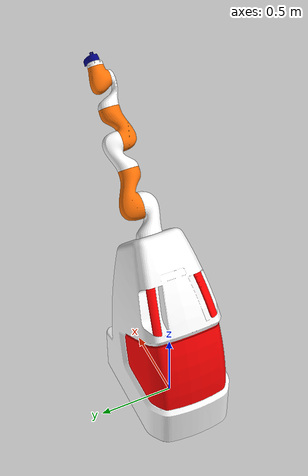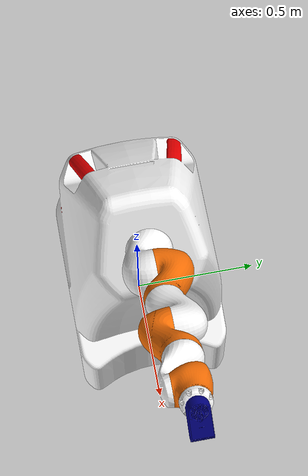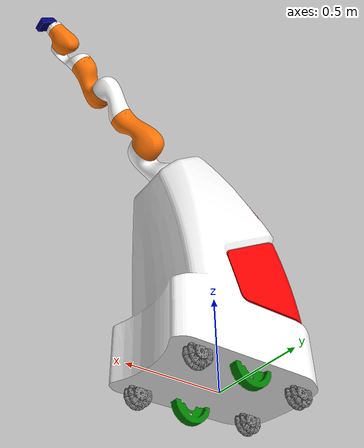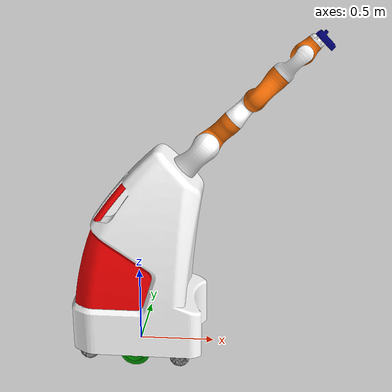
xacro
<?xml version="1.0"?>
<robot name="Ronna"  xmlns:xacro="http://www.ros.org/wiki/xacro">

    <xacro:include filename="ronna_common_properties.xacro"/>
    <xacro:include filename="ronna_K1_mobilna.urdf.xacro"/>
    <xacro:include filename="ronna_K1_mobilna_gazebo.xacro"/>
        <!-- it is important to include (gazebo.xacro) after urdf because we references on the link in urdf -->
    <xacro:include filename="ronna_K1_robot.urdf.xacro"/>
    <xacro:include filename="ronna_K1_robot_gazebo.xacro"/>

    <joint name="mobile_platform_robot_joint" type="fixed">
        <parent link="platform_link"/>
        <child link="robot_base_link"/>
        <origin xyz="0.185550 0.0 1.1000" rpy="0.0 ${pi/4} 0.0"/>
    </joint>

</robot>

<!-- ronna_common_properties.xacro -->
<robot name="mobilni_robot" xmlns:xacro="http://www.ros.org/wiki/xacro">
<!-- definition of material -->
    <!--gazebo color pallet  https://gist.github.com/naoki-mizuno/5e63a13597d5c5fe817c1600b829595e -->

    <material name="blue">
        <color rgba="0 0 0.5 1"/>
    </material>

    <material name="green">
        <color rgba="0 0.5 0 1"/>
    </material>

    <material name="orange">
        <color rgba="1 0.45 0.02345 1"/>
    </material>

    <material name="grey">
        <color rgba="0.5 0.5 0.5 1"/>
    </material>

    <material name="white">
        <color rgba="1 1 1 1"/>
    </material>

    <material name="red">
        <color rgba="1 0 0 1"/>
    </material>

    <!--possible define of macros here and call it in main xacro-->

</robot>

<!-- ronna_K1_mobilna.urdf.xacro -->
<robot xmlns:xacro="http://www.ros.org/wiki/xacro">

<!-- links -->
    <link name="base_footprint"/>

    <link name="platform_link">
        <visual>
            <origin xyz="0 0 0" rpy="0 0 0"/>
            <geometry>
                <mesh filename="file://$(find my_robot_description)/meshes/platform.stl" scale="0.001 0.001 0.001"/>
            </geometry>
            <material name="white"/>
        </visual>

        <inertial>
            <origin xyz="0 0 0.7" rpy="0 0 0"/>
            <mass value="365"/>
            <inertia ixx="60.048910"  ixy="0"  ixz="0" iyy="65.952215" iyz="0" izz="24.168592" />

        </inertial>

        <collision>
            <geometry>
                <box size="0.9 0.6 1.4" />
            </geometry>
            <origin xyz="0 0 0.7" rpy="0 0 0"/>
        </collision>
    </link>

    <link name="service_cover_link">
        <visual>
            <origin xyz="0 0 0" rpy="0 0 0"/>
            <geometry>
                <mesh filename="file://$(find my_robot_description)/meshes/service_cover.stl" scale="0.001 0.001 0.001"/>
            </geometry>
            <material name="red"/>
        </visual>

        <inertial>
            <origin xyz="0 0 -0.1" rpy="0 0 0"/>
            <mass value="5"/>
            <inertia ixx="0.196649"  ixy="0.000008"  ixz="-0.005308" iyy="0.166915" iyz="-0.000002" izz="0.193389" />
        </inertial>

        <collision>
            <geometry>
                <box size="0.01 0.01 0.01" />
            </geometry>
            <origin xyz="0 0 -0.005" rpy="0 0 0"/>

        </collision>
    </link>

     <!-- wheels
         DIFFERENTIAL drive wheels
            ${pi / 2.0}=1.5708=90deg -->
            <link name="desni_kotac_link">
                <visual>
                    <origin xyz="0 0 0" rpy="0 ${pi / 2.0} 0" />
                    <geometry>
                        <mesh filename="file://$(find my_robot_description)/meshes/drive_wheel.stl" scale="0.001 0.001 0.001"/>
                    </geometry>
                    <material name="green" />
                </visual>
                <inertial>
                    <origin xyz="0 0 0" rpy="0 ${pi / 2.0} 0"/>
                    <mass value="2"/>
                    <inertia ixx="0.014021"  ixy="0"  ixz="0" iyy="0.007364" iyz="0" izz="0.007364"/>
                </inertial>

                <collision>
                    <geometry>
                        <cylinder radius="0.1" length="0.06"/>
                    </geometry>
                    <origin xyz="0 0 0" rpy="0 0 0"/>
                </collision>
            </link>

            <link name="lijevi_kotac_link">
                <visual>
                    <origin xyz="0 0 0" rpy="0 ${pi / 2.0} 0" />
                    <geometry>
                        <mesh filename="file://$(find my_robot_description)/meshes/drive_wheel.stl" scale="0.001 0.001 0.001"/>
                    </geometry>
                    <material name="green" />
                </visual>
                <inertial>
                    <origin xyz="0 0 0" rpy="0 ${pi / 2.0} 0"/>
                    <mass value="2"/>
                    <inertia ixx="0.014021"  ixy="0"  ixz="0" iyy="0.007364" iyz="0" izz="0.007364"/>
                </inertial>

                <collision>
                    <geometry>
                        <cylinder radius="0.1" length="0.06"/>
                    </geometry>
                    <origin xyz="0 0 0" rpy="0 0 0"/>
                </collision>
            </link>

        <!-- omni wheel    p-forward d-right l-left z-back  -->

            <!-- xacro:macro function that reduces repetition of the same code
                        it is possible of call macros inside the macros-->
            <xacro:macro name="omni_whell" params="name" >
                <link name="${name}">
                    <visual>
                        <geometry>
                            <mesh filename="file://$(find my_robot_description)/meshes/ommni_suport_wheel.stl" scale="0.001 0.001 0.001"/>
                        </geometry>
                        <origin xyz="0 -0.016 0" rpy="${pi / 2.0} 0 0" />
                        <material name="grey" />
                    </visual>

                    <inertial>
                        <origin xyz="0 -0.016 0" rpy="${pi / 2.0} 0 0" />
                        <mass value="0.5"/>
                        <inertia ixx="0.000638"  ixy="0"  ixz="0" iyy="0.000638" iyz="0" izz="0.007364" />
                    </inertial>

                    <collision>
                        <geometry>
                            <cylinder radius="0.065" length="0.08"/>
                        </geometry>
                        <origin xyz="0 -0.016 0" rpy="${pi / 2.0} 0 0" />
                    </collision>
                </link>
            </xacro:macro>

            <xacro:omni_whell name="omni_pd_link"/>
            <xacro:omni_whell name="omni_pl_link"/>
            <xacro:omni_whell name="omni_zd_link"/>
            <xacro:omni_whell name="omni_zl_link"/>

            <!-- without using the macro function we have a lot of repetition of the same code-->

<!-- JOINT CONFIGURATION -->

    <joint name="footprint_platforma_joint" type="fixed">
        <parent link="base_footprint"/>
        <child link="platform_link"/>
        <origin xyz="0 0 0" rpy="0 0 0"/>
    </joint>

    <joint name="platforma_cover_joint" type="fixed">
        <parent link="platform_link"/>
        <child link="service_cover_link"/>
        <origin xyz="0 0 0" rpy="0 0 0"/>
    </joint>

    <!-- diff drive joint -->

        <joint name="platforma_right_wheel_joint" type="continuous">
            <parent link="platform_link"/>
            <child link="desni_kotac_link" />
            <origin xyz="0 -0.2239445 0.03" rpy="${pi / 2.0} 0 0" />
            <axis xyz="0 0 1" />
        </joint>

        <joint name="platforma_left_wheel_joint" type="continuous">
            <parent link="platform_link"/>
            <child link="lijevi_kotac_link" />
            <origin xyz="0 0.2239445 0.03" rpy="${pi / 2.0} 0 0" />
            <axis xyz="0 0 1" />
        </joint>
    <!-- omni joint also posible with marco functions-->

        <xacro:macro name="omni_joint" params="name position_x position_y">
            <joint name="platforma_omni_${name}_joint" type="fixed">
                <parent link="platform_link"/>
                <child link="omni_${name}_link" />
                <origin xyz="${position_x} ${position_y} 0" rpy="0 0 0" />
                <axis xyz="0 1 0" />
            </joint>
        </xacro:macro>

        <xacro:omni_joint name="pd" position_x="0.292" position_y="-0.232" />
        <xacro:omni_joint name="pl" position_x="0.292" position_y="0.232" />
        <xacro:omni_joint name="zd" position_x="-0.315" position_y="-0.182" />
        <xacro:omni_joint name="zl" position_x="-0.315" position_y="0.182" />

</robot>

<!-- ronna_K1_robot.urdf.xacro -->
<robot  xmlns:xacro="http://www.ros.org/wiki/xacro">

<!-- LINKOVI -->

    <link name="robot_base_link">
        <visual>
            <origin xyz="0 0 0" rpy="0 0 0"/>  <!-- tu su definirani pomaci tijela u odnosu na postojeći koord tijela-->
            <geometry>
                <mesh filename="file://$(find my_robot_description)/meshes/robot_base.stl" scale="0.001 0.001 0.001"/>
            </geometry>
            <material name="orange"/>
        </visual>

        <inertial>
            <origin xyz="0 0 0" rpy="0 0 0"/>
            <mass value="5.85"/>
            <inertia ixx="100"  ixy="0"  ixz="0" iyy="100" iyz="0" izz="100" />
        </inertial>

        <collision>
            <origin xyz="0 0 0" rpy="0 0 0"/>
            <geometry>
                <mesh filename="file://$(find my_robot_description)/meshes/robot_base.stl" scale="0.001 0.001 0.001"/>
            </geometry>
        </collision>

    </link>

    <!-- JOINT KONFIGURACIJA -->

    <joint name="base_link_1_joint" type="revolute">
        <axis xyz="0 0 1"/>
        <limit effort="0" lower="-2.967059" upper="2.967059" velocity="1.71042"/>
        <origin xyz="0 0 0.36" rpy="0 0 0 "/>
        <parent link="robot_base_link"/>
        <child link="robot_1_link"/>
        <dynamics damping="0.05" friction="0.1"/>

    </joint>

    <link name="robot_1_link">
        <visual>
            <origin xyz="0 0 0" rpy="0 0 0"/>
            <geometry>
                <mesh filename="file://$(find my_robot_description)/meshes/robot_link_1.stl" scale="0.001 0.001 0.001"/>
            </geometry>
            <material name="white"/>
        </visual>

        <inertial>
            <origin xyz="0 0 0" rpy="0 0 0"/>
            <mass value="5.85"/>
            <inertia ixx="100"  ixy="0"  ixz="0" iyy="100" iyz="0" izz="100" />
        </inertial>

        <collision>
            <origin xyz="0 0 0" rpy="0 0 0"/>
            <geometry>
                <mesh filename="file://$(find my_robot_description)/meshes/robot_link_1.stl" scale="0.001 0.001 0.001"/>
            </geometry>
        </collision>

    </link>

    <joint name="link_1-2_joint" type="revolute">
        <axis xyz="0 0 1"/>
        <limit effort="0" lower="-2.09439" upper="2.09439" velocity="1.71042"/>
        <origin xyz="0 0 0" rpy="-1.57 0 0 "/>
        <parent link="robot_1_link"/>
        <child link="robot_2_link"/>
        <dynamics damping="0.05" friction="0.1"/>
    </joint>

    <link name="robot_2_link">
        <visual>
            <origin xyz="0 0 0" rpy="0 0 0"/>
            <geometry>
                <mesh filename="file://$(find my_robot_description)/meshes/robot_link_2.stl" scale="0.001 0.001 0.001"/>
            </geometry>

            <material name="orange"/>
        </visual>

        <inertial>
            <origin xyz="0 0 0" rpy="0 0 0"/>
            <mass value="4.9289"/>
            <inertia ixx="100"  ixy="0"  ixz="0" iyy="100" iyz="0" izz="100" />
        </inertial>

        <collision>
            <origin xyz="0 0 0" rpy="0 0 0"/>
            <geometry>
                <mesh filename="file://$(find my_robot_description)/meshes/robot_link_2.stl" scale="0.001 0.001 0.001"/>
            </geometry>
        </collision>
    </link>

    <joint name="link_2-3_joint" type="revolute">
        <axis xyz="0 0 1"/>
        <limit effort="0" lower="-2.967059" upper="2.967059" velocity="1.7452"/>
        <origin xyz="0 -0.420 0" rpy="1.57070 0 0"/>
        <parent link="robot_2_link"/>
        <child link="robot_3_link"/>
        <dynamics damping="0.05" friction="0.1"/>
    </joint>

    <link name="robot_3_link">
        <visual>
            <origin xyz="0 0 0" rpy="0 0 0"/>
            <geometry>
                <mesh filename="file://$(find my_robot_description)/meshes/robot_link_3.stl" scale="0.001 0.001 0.001"/>
            </geometry>
            <material name="white"/>
        </visual>

        <inertial>
            <origin xyz="0 0 0" rpy="0 0 0"/>
            <mass value="3.3683"/>
            <inertia ixx="100"  ixy="0"  ixz="0" iyy="100" iyz="0" izz="100" />
        </inertial>

        <collision>
            <origin xyz="0 0 0" rpy="0 0 0"/>
            <geometry>
                <mesh filename="file://$(find my_robot_description)/meshes/robot_link_3.stl" scale="0.001 0.001 0.001"/>
            </geometry>
        </collision>
    </link>

    <joint name="link_3-4_joint" type="revolute">
        <axis xyz="0 0 1"/>
        <limit effort="0" lower="-2.09439" upper="2.09439" velocity="2.26893"/>
        <origin xyz="0 0 0" rpy="1.57070 0 0 "/>
        <parent link="robot_3_link"/>
        <child link="robot_4_link"/>
        <dynamics damping="0.05" friction="0.1"/>
    </joint>

    <link name="robot_4_link">
        <visual>
            <origin xyz="0 0 0" rpy="0 0 0"/>
            <geometry>
                <mesh filename="file://$(find my_robot_description)/meshes/robot_link_4.stl" scale="0.001 0.001 0.001"/>
            </geometry>
            <material name="orange"/>
        </visual>

        <inertial>
            <origin xyz="0 0 0" rpy="0 0 0"/>
            <mass value="4.3087"/>
            <inertia ixx="100"  ixy="0"  ixz="0" iyy="100" iyz="0" izz="100" />
        </inertial>

        <collision>
            <origin xyz="0 0 0" rpy="0 0 0"/>
            <geometry>
                <mesh filename="file://$(find my_robot_description)/meshes/robot_link_4.stl" scale="0.001 0.001 0.001"/>
            </geometry>
        </collision>
    </link>

    <joint name="link_4-5_joint" type="revolute">
        <axis xyz="0 0 1"/>
        <limit effort="0" lower="-2.967059" upper="2.967059" velocity="2.44346"/>
        <origin xyz="0 0.4 0" rpy="-1.57070 0 0 "/>
        <parent link="robot_4_link"/>
        <child link="robot_5_link"/>
        <dynamics damping="0.05" friction="0.1"/>
    </joint>

    <link name="robot_5_link">
        <visual>
            <origin xyz="0 0 0" rpy="0 0 0"/>
            <geometry>
                <mesh filename="file://$(find my_robot_description)/meshes/robot_link_5.stl" scale="0.001 0.001 0.001"/>
            </geometry>
            <material name="white"/>
        </visual>

        <inertial>
            <origin xyz="0 0 0" rpy="0 0 0"/>
            <mass value="3.5167"/>
            <inertia ixx="100"  ixy="0"  ixz="0" iyy="100" iyz="0" izz="100" />
        </inertial>

        <collision>
            <origin xyz="0 0 0" rpy="0 0 0"/>
            <geometry>
                <mesh filename="file://$(find my_robot_description)/meshes/robot_link_5.stl" scale="0.001 0.001 0.001"/>
            </geometry>
        </collision>
    </link>

    <joint name="link_5-6_joint" type="revolute">
        <axis xyz="0 0 1"/>
        <limit effort="0" lower="-2.09439" upper="2.09439" velocity="3.14159"/>
        <origin xyz="0 0 0" rpy="-1.57070 0 0 "/>
        <parent link="robot_5_link"/>
        <child link="robot_6_link"/>
        <dynamics damping="0.05" friction="0.1"/>
    </joint>

    <link name="robot_6_link">
        <visual>
            <origin xyz="0 0 0" rpy="0 0 0"/>
            <geometry>
                <mesh filename="file://$(find my_robot_description)/meshes/robot_link_6.stl" scale="0.001 0.001 0.001"/>
            </geometry>
            <material name="orange"/>
        </visual>

        <inertial>
            <origin xyz="0 0 0" rpy="0 0 0"/>
            <mass value="1.5101"/>
            <inertia ixx="100"  ixy="0"  ixz="0" iyy="100" iyz="0" izz="100" />
        </inertial>

        <collision>
            <origin xyz="0 0 0" rpy="0 0 0"/>
            <geometry>
                <mesh filename="file://$(find my_robot_description)/meshes/robot_link_6.stl" scale="0.001 0.001 0.001"/>
            </geometry>
        </collision>
    </link>

    <joint name="link_6-7_joint" type="revolute">
        <axis xyz="0 0 1"/>
        <limit effort="0" lower="-3.05433" upper="3.05433" velocity="3.14159"/>
        <origin xyz="0 -0.126 0" rpy="1.5707 0 0 "/>
        <parent link="robot_6_link"/>
        <child link="robot_7_link"/>
        <dynamics damping="0.05" friction="0.1"/>
    </joint>

    <link name="robot_7_link">
        <visual>
            <origin xyz="0 0 0" rpy="0 0 0"/>
            <geometry>
                <mesh filename="file://$(find my_robot_description)/meshes/robot_link_7.stl" scale="0.001 0.001 0.001"/>
            </geometry>
            <material name="white"/>
        </visual>

        <inertial>
            <origin xyz="0 0 0" rpy="0 0 0"/>
            <mass value="1.0042"/>
            <inertia ixx="100"  ixy="0"  ixz="0" iyy="100" iyz="0" izz="100" />
        </inertial>

        <collision>
            <origin xyz="0 0 0" rpy="0 0 0"/>
            <geometry>
                <mesh filename="file://$(find my_robot_description)/meshes/robot_link_7.stl" scale="0.001 0.001 0.001"/>
            </geometry>
        </collision>
    </link>

<!-- Depending on the need, one of the tools is activated-->

    <link name="adapter_link">
        <visual>
            <origin xyz="0 0 0" rpy="0 0 0"/>
            <geometry>
                <mesh filename="file://$(find my_robot_description)/meshes/adapter.stl" scale="0.001 0.001 0.001"/>
            </geometry>
            <material name="blue"/>
        </visual>
    </link>

    <joint name="link_7_adapter_joint" type="fixed">
            <parent link="robot_7_link"/>
            <child link="adapter_link"/>
            <origin xyz="0 0 0" rpy="0 0 0"/>
    </joint>

</robot>
